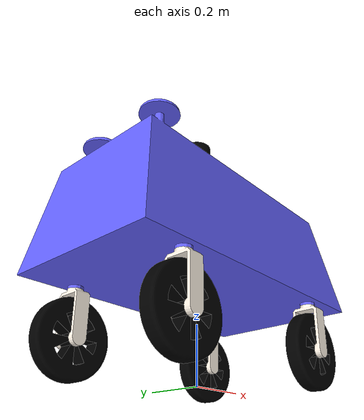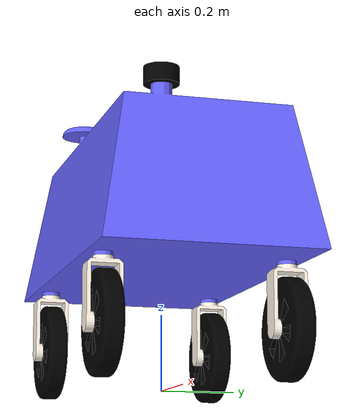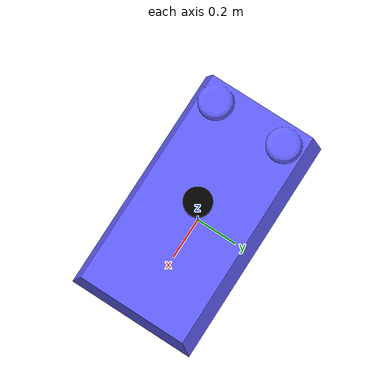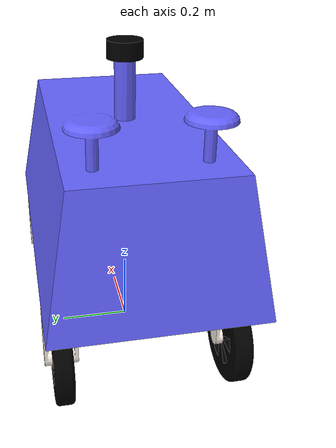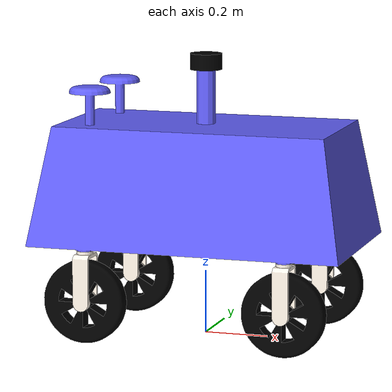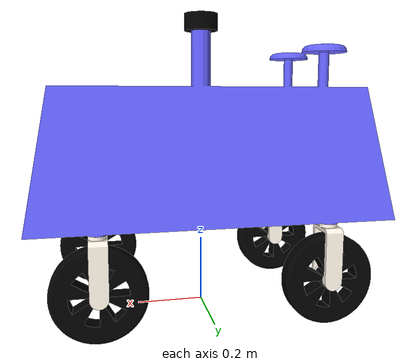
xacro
<?xml version="1.0" encoding="utf-8"?>
<robot name="$(arg robot_name)" xmlns:xacro="http://wiki.ros.org/xacro">

  <xacro:property name="PI" value="3.1415926535897931"/>
  <xacro:property name="mesh_path" value="package://car_4ws_4wd/meshes"/>

  <xacro:property name="wheel_offset_x" value="0.32" /> <xacro:property name="wheel_offset_y" value="0.235" /> <xacro:property name="steer_limit" value="0.55" />

  <link name="base"/>
  <joint name="base_joint" type="fixed">
    <parent link="base"/>
    <child link="base_link"/>
    <origin xyz="0 0 0.3" rpy="0 0 0"/>
  </joint>

  <link name="base_link">
    <inertial>
      <origin xyz="-0.00117586528514695 -4.30552833609457E-17 0.174335815287564" rpy="0 0 0" />
      <mass value="40.2533565247656" />
      <inertia ixx="1.311634309655" ixy="1.64735322115376E-16" ixz="0.0137789561118299"
               iyy="3.43401128074704" iyz="-1.3755764102141E-16" izz="3.79965514788602" />
    </inertial>
    <visual>
      <origin xyz="0 0 0" rpy="0 0 0" />
      <geometry>
        <mesh filename="${mesh_path}/base_link.STL" />
      </geometry>
      <material name="">
        <color rgba="0.392156862745098 0.384313725490196 1 1" />
      </material>
    </visual>
    <collision>
      <origin xyz="0 0 0" rpy="0 0 0" />
      <geometry>
        <mesh filename="${mesh_path}/base_link.STL" />
      </geometry>
    </collision>
  </link>

  <xacro:macro name="wheel_assembly" params="prefix x_pos y_pos">

    <link name="${prefix}_steer_link">
      <inertial>
        <origin xyz="5.5511E-17 0 -0.088728" rpy="0 0 0" />
        <mass value="10" />
        <inertia ixx="0.047904" ixy="0" ixz="0" iyy="0.037562" iyz="0" izz="0.014192" />
      </inertial>
      <visual>
        <origin xyz="0 0 0" rpy="0 0 0" />
        <geometry>
          <mesh filename="${mesh_path}/${prefix}_steer_link.STL" />
        </geometry>
        <material name="">
          <color rgba="1 0.96078 0.90588 1" />
        </material>
      </visual>
      <collision>
        <origin xyz="0 0 0" rpy="0 0 0" />
        <geometry>
          <mesh filename="${mesh_path}/${prefix}_steer_link.STL" />
        </geometry>
      </collision>
    </link>

    <joint name="${prefix}_steer_joint" type="revolute">
      <origin xyz="${x_pos} ${y_pos} -0.01" rpy="0 0 0" />
      <parent link="base_link" />
      <child link="${prefix}_steer_link" />
      <axis xyz="0 0 1" />
      <limit lower="-${steer_limit}" upper="${steer_limit}" effort="100" velocity="1" />
    </joint>

    <link name="${prefix}_drive_link">
      <inertial>
        <origin xyz="0 0 0" rpy="0 0 0" />
        <mass value="2.1666" />
        <inertia ixx="0.010578" ixy="0" ixz="0" iyy="0.010578" iyz="0" izz="0.020276" />
      </inertial>
      <visual>
        <origin xyz="0 0 0" rpy="0 0 0" />
        <geometry>
          <mesh filename="${mesh_path}/${prefix}_drive_link.STL" />
        </geometry>
        <material name="">
          <color rgba="0 0 0 1" />
        </material>
      </visual>
      <collision>
        <origin xyz="0 0 0" rpy="0 0 0" />
        <geometry>
          <cylinder radius="0.13" length="0.05"/>
        </geometry>
      </collision>
    </link>

    <joint name="${prefix}_drive_joint" type="continuous">
      <origin xyz="0 0 -0.16" rpy="${PI/2} 0 0" />
      <parent link="${prefix}_steer_link" />
      <child link="${prefix}_drive_link" />
      <axis xyz="0 0 -1" />
    </joint>

    <gazebo reference="${prefix}_drive_link">
      <mu1>1.0</mu1>
      <mu2>1.0</mu2>
      <kp>100000.0</kp>
      <kd>10000.0</kd>
      <minDepth>0.001</minDepth>
      <maxVel>5.0</maxVel>
      <material>Gazebo/Black</material>
    </gazebo>

    <transmission name="${prefix}_steer_trans">
      <type>transmission_interface/SimpleTransmission</type>
      <joint name="${prefix}_steer_joint">
        <hardwareInterface>hardware_interface/PositionJointInterface</hardwareInterface>
      </joint>
      <actuator name="${prefix}_steer_motor">
        <mechanicalReduction>1</mechanicalReduction>
        <hardwareInterface>hardware_interface/PositionJointInterface</hardwareInterface>
      </actuator>
    </transmission>

    <transmission name="${prefix}_drive_trans">
      <type>transmission_interface/SimpleTransmission</type>
      <joint name="${prefix}_drive_joint">
        <hardwareInterface>hardware_interface/VelocityJointInterface</hardwareInterface>
      </joint>
      <actuator name="${prefix}_drive_motor">
        <mechanicalReduction>1</mechanicalReduction>
        <hardwareInterface>hardware_interface/VelocityJointInterface</hardwareInterface>
      </actuator>
    </transmission>
  </xacro:macro>

  <xacro:wheel_assembly prefix="fl" x_pos="${wheel_offset_x}"  y_pos="${wheel_offset_y}" />
  <xacro:wheel_assembly prefix="fr" x_pos="${wheel_offset_x}"  y_pos="-${wheel_offset_y}" />
  <xacro:wheel_assembly prefix="rl" x_pos="-${wheel_offset_x}" y_pos="${wheel_offset_y}" />
  <xacro:wheel_assembly prefix="rr" x_pos="-${wheel_offset_x}" y_pos="-${wheel_offset_y}" />

  <link name="lidar_link">
    <inertial>
      <origin xyz="-3.4211E-49 9.7454E-19 1.1102E-16" rpy="0 0 0" />
      <mass value="0.3927" />
      <inertia ixx="0.00032725" ixy="9.7388E-52" ixz="-6.1103E-36"
               iyy="0.00032725" iyz="-3.3795E-35" izz="0.00049087" />
    </inertial>
    <visual>
      <origin xyz="0 0 0" rpy="0 0 0" />
      <geometry>
        <mesh filename="${mesh_path}/lidar_link.STL" />
      </geometry>
      <material name="">
        <color rgba="0 0 0 1" />
      </material>
    </visual>
    <collision>
      <origin xyz="0 0 0" rpy="0 0 0" />
      <geometry>
        <mesh filename="${mesh_path}/lidar_link.STL" />
      </geometry>
    </collision>
  </link>

  <joint name="lidar_joint" type="fixed">
    <origin xyz="0 0 0.565" rpy="0 0 0" />
    <parent link="base_link" />
    <child link="lidar_link" />
  </joint>

  <gazebo reference="lidar_link">
    <material>Gazebo/Black</material>
    <sensor type="ray" name="lidar_sensor">
      <update_rate>60.0</update_rate>
      <ray>
        <scan>
          <horizontal>
            <min_angle>0</min_angle>
            <max_angle>6.28318</max_angle>
            <samples>90</samples>
          </horizontal>
        </scan>
        <range>
          <min>0.15</min>
          <max>8.0</max>
          <resolution>0.01</resolution>
        </range>
      </ray>
      <plugin name="gazebo_ros_lidar_controller" filename="libgazebo_ros_laser.so">
        <topicName>scan</topicName>
        <frameName>/$(arg robot_name)/lidar_link</frameName>
      </plugin>
    </sensor>
  </gazebo>

  <gazebo>
    <plugin name="gazebo_ros_control" filename="libgazebo_ros_control.so">
      <robotNamespace>/$(arg robot_name)</robotNamespace>
    </plugin>
  </gazebo>

</robot>
